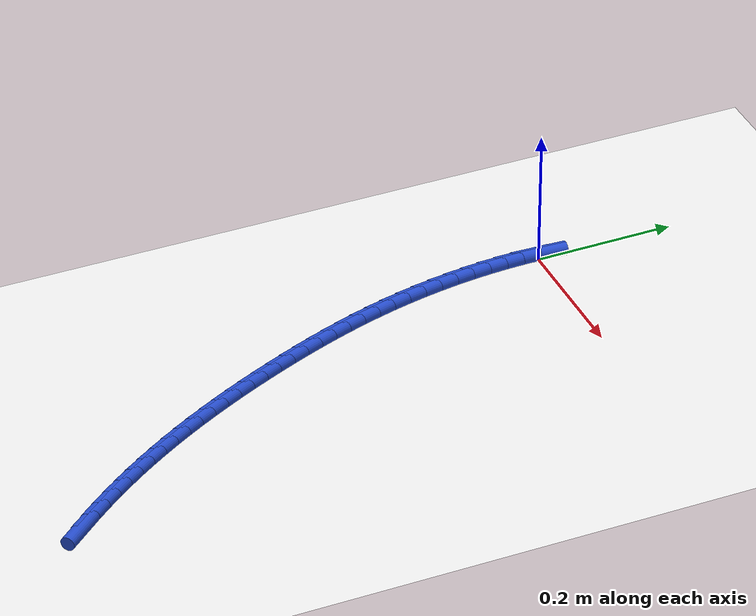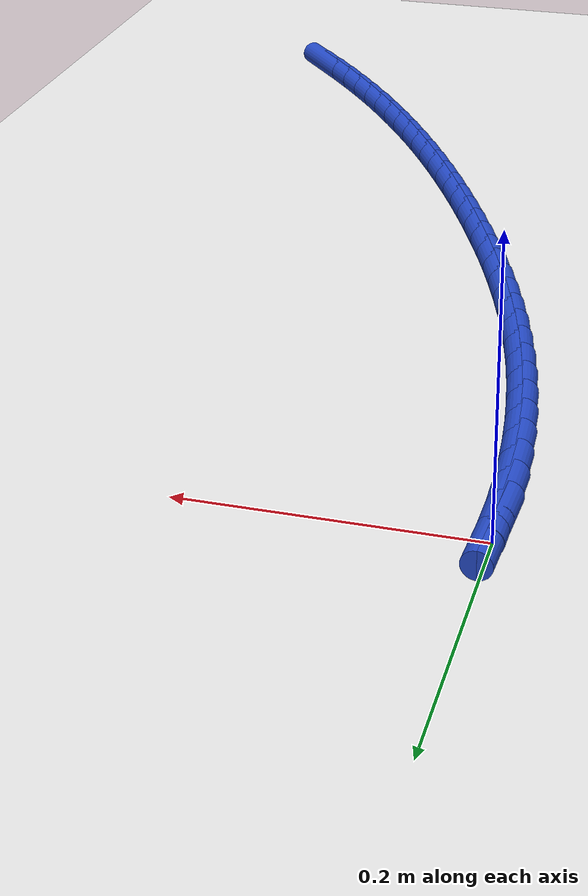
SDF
<sdf version="1.6">
 <world name="default">
  <model name="ground_plane">
   <static>1</static>
   <link name="link">
    <collision name="collision">
     <geometry><plane><normal>0 0 1</normal><size>100 100</size></plane></geometry>
     <surface><friction><ode><mu>100</mu><mu2>50</mu2></ode></friction></surface>
    </collision>
    <visual name="visual">
     <cast_shadows>0</cast_shadows>
     <geometry><plane><normal>0 0 1</normal><size>100 100</size></plane></geometry>
     <material>
      <script><uri>file://media/materials/scripts/gazebo.material</uri><name>Gazebo/WhiteGlow</name></script>
     </material>
    </visual>
   </link>
  </model>
  <model name="line">
   <link name="link_0">
    <pose>-1.1275702593849246e-17 -2.0816681711721685e-17 0.01 0 1.57 1.5284242386121365</pose>
    <collision name="collision">
     <geometry><cylinder><radius>0.01</radius><length>0.08</length></cylinder></geometry>
    </collision>
    <visual name="visual">
     <material>
      <script><name>Gazebo/Blue</name><uri>file://media/materials/scripts/gazebo.material</uri></script>
     </material>
     <geometry><cylinder><radius>0.01</radius><length>0.08</length></cylinder></geometry>
    </visual>
   </link>
   <link name="link_247">
    <pose>0.31622685356395164 -0.7852717183395589 0.01 0 1.57 -0.8644060937689118</pose>
    <collision name="collision">
     <geometry><cylinder><radius>0.01</radius><length>0.08</length></cylinder></geometry>
    </collision>
    <visual name="visual">
     <material>
      <script><name>Gazebo/Blue</name><uri>file://media/materials/scripts/gazebo.material</uri></script>
     </material>
     <geometry><cylinder><radius>0.01</radius><length>0.08</length></cylinder></geometry>
    </visual>
   </link>
   <link name="link_248">
    <pose>0.29882026503027975 -0.7648718924744397 0.01 0 1.57 -0.8876654868476331</pose>
    <collision name="collision">
     <geometry><cylinder><radius>0.01</radius><length>0.08</length></cylinder></geometry>
    </collision>
    <visual name="visual">
     <material>
      <script><name>Gazebo/Blue</name><uri>file://media/materials/scripts/gazebo.material</uri></script>
     </material>
     <geometry><cylinder><radius>0.01</radius><length>0.08</length></cylinder></geometry>
    </visual>
   </link>
   <link name="link_249">
    <pose>0.282001062450877 -0.7442057426404529 0.01 0 1.57 -0.9104983355037081</pose>
    <collision name="collision">
     <geometry><cylinder><radius>0.01</radius><length>0.08</length></cylinder></geometry>
    </collision>
    <visual name="visual">
     <material>
      <script><name>Gazebo/Blue</name><uri>file://media/materials/scripts/gazebo.material</uri></script>
     </material>
     <geometry><cylinder><radius>0.01</radius><length>0.08</length></cylinder></geometry>
    </visual>
   </link>
   <link name="link_250">
    <pose>0.2657501526614574 -0.7232795568753297 0.01 0 1.57 -0.9328552674432303</pose>
    <collision name="collision">
     <geometry><cylinder><radius>0.01</radius><length>0.08</length></cylinder></geometry>
    </collision>
    <visual name="visual">
     <material>
      <script><name>Gazebo/Blue</name><uri>file://media/materials/scripts/gazebo.material</uri></script>
     </material>
     <geometry><cylinder><radius>0.01</radius><length>0.08</length></cylinder></geometry>
    </visual>
   </link>
   <link name="link_251">
    <pose>0.2500484424977351 -0.7020996232168016 0.01 0 1.57 -0.9546900209784477</pose>
    <collision name="collision">
     <geometry><cylinder><radius>0.01</radius><length>0.08</length></cylinder></geometry>
    </collision>
    <visual name="visual">
     <material>
      <script><name>Gazebo/Blue</name><uri>file://media/materials/scripts/gazebo.material</uri></script>
     </material>
     <geometry><cylinder><radius>0.01</radius><length>0.08</length></cylinder></geometry>
    </visual>
   </link>
   <link name="link_252">
    <pose>0.23487683879542384 -0.6806722297025989 0.01 0 1.57 -0.9759597164682492</pose>
    <collision name="collision">
     <geometry><cylinder><radius>0.01</radius><length>0.08</length></cylinder></geometry>
    </collision>
    <visual name="visual">
     <material>
      <script><name>Gazebo/Blue</name><uri>file://media/materials/scripts/gazebo.material</uri></script>
     </material>
     <geometry><cylinder><radius>0.01</radius><length>0.08</length></cylinder></geometry>
    </visual>
   </link>
   <link name="link_253">
    <pose>0.22021624839023862 -0.6590036643704545 0.01 0 1.57 -0.9966250515895099</pose>
    <collision name="collision">
     <geometry><cylinder><radius>0.01</radius><length>0.08</length></cylinder></geometry>
    </collision>
    <visual name="visual">
     <material>
      <script><name>Gazebo/Blue</name><uri>file://media/materials/scripts/gazebo.material</uri></script>
     </material>
     <geometry><cylinder><radius>0.01</radius><length>0.08</length></cylinder></geometry>
    </visual>
   </link>
   <link name="link_254">
    <pose>0.20604757811789318 -0.6371002152580991 0.01 0 1.57 -1.0166504215663792</pose>
    <collision name="collision">
     <geometry><cylinder><radius>0.01</radius><length>0.08</length></cylinder></geometry>
    </collision>
    <visual name="visual">
     <material>
      <script><name>Gazebo/Blue</name><uri>file://media/materials/scripts/gazebo.material</uri></script>
     </material>
     <geometry><cylinder><radius>0.01</radius><length>0.08</length></cylinder></geometry>
    </visual>
   </link>
   <link name="link_255">
    <pose>0.1923517348141016 -0.6149681704032641 0.01 0 1.57 -1.0360039679335038</pose>
    <collision name="collision">
     <geometry><cylinder><radius>0.01</radius><length>0.08</length></cylinder></geometry>
    </collision>
    <visual name="visual">
     <material>
      <script><name>Gazebo/Blue</name><uri>file://media/materials/scripts/gazebo.material</uri></script>
     </material>
     <geometry><cylinder><radius>0.01</radius><length>0.08</length></cylinder></geometry>
    </visual>
   </link>
   <link name="link_256">
    <pose>0.17910962531457797 -0.5926138178436806 0.01 0 1.57 -1.0546575614224025</pose>
    <collision name="collision">
     <geometry><cylinder><radius>0.01</radius><length>0.08</length></cylinder></geometry>
    </collision>
    <visual name="visual">
     <material>
      <script><name>Gazebo/Blue</name><uri>file://media/materials/scripts/gazebo.material</uri></script>
     </material>
     <geometry><cylinder><radius>0.01</radius><length>0.08</length></cylinder></geometry>
    </visual>
   </link>
   <link name="link_257">
    <pose>0.16630215645503654 -0.5700434456170803 0.01 0 1.57 -1.0725867260849322</pose>
    <collision name="collision">
     <geometry><cylinder><radius>0.01</radius><length>0.08</length></cylinder></geometry>
    </collision>
    <visual name="visual">
     <material>
      <script><name>Gazebo/Blue</name><uri>file://media/materials/scripts/gazebo.material</uri></script>
     </material>
     <geometry><cylinder><radius>0.01</radius><length>0.08</length></cylinder></geometry>
    </visual>
   </link>
   <link name="link_258">
    <pose>0.1539102350711913 -0.5472633417611941 0.01 0 1.57 -1.089770512789628</pose>
    <collision name="collision">
     <geometry><cylinder><radius>0.01</radius><length>0.08</length></cylinder></geometry>
    </collision>
    <visual name="visual">
     <material>
      <script><name>Gazebo/Blue</name><uri>file://media/materials/scripts/gazebo.material</uri></script>
     </material>
     <geometry><cylinder><radius>0.01</radius><length>0.08</length></cylinder></geometry>
    </visual>
   </link>
   <link name="link_259">
    <pose>0.14191476799875657 -0.5242797943137538 0.01 0 1.57 -1.1061913307697466</pose>
    <collision name="collision">
     <geometry><cylinder><radius>0.01</radius><length>0.08</length></cylinder></geometry>
    </collision>
    <visual name="visual">
     <material>
      <script><name>Gazebo/Blue</name><uri>file://media/materials/scripts/gazebo.material</uri></script>
     </material>
     <geometry><cylinder><radius>0.01</radius><length>0.08</length></cylinder></geometry>
    </visual>
   </link>
   <link name="link_260">
    <pose>0.13029666207344637 -0.5010990913124905 0.01 0 1.57 -1.1218347460149003</pose>
    <collision name="collision">
     <geometry><cylinder><radius>0.01</radius><length>0.08</length></cylinder></geometry>
    </collision>
    <visual name="visual">
     <material>
      <script><name>Gazebo/Blue</name><uri>file://media/materials/scripts/gazebo.material</uri></script>
     </material>
     <geometry><cylinder><radius>0.01</radius><length>0.08</length></cylinder></geometry>
    </visual>
   </link>
   <link name="link_261">
    <pose>0.11903682413097454 -0.4777275207951348 0.01 0 1.57 -1.1366892550506047</pose>
    <collision name="collision">
     <geometry><cylinder><radius>0.01</radius><length>0.08</length></cylinder></geometry>
    </collision>
    <visual name="visual">
     <material>
      <script><name>Gazebo/Blue</name><uri>file://media/materials/scripts/gazebo.material</uri></script>
     </material>
     <geometry><cylinder><radius>0.01</radius><length>0.08</length></cylinder></geometry>
    </visual>
   </link>
   <link name="link_262">
    <pose>0.10811616100705584 -0.4541713707994195 0.01 0 1.57 -1.150747321769742</pose>
    <collision name="collision">
     <geometry><cylinder><radius>0.01</radius><length>0.08</length></cylinder></geometry>
    </collision>
    <visual name="visual">
     <material>
      <script><name>Gazebo/Blue</name><uri>file://media/materials/scripts/gazebo.material</uri></script>
     </material>
     <geometry><cylinder><radius>0.01</radius><length>0.08</length></cylinder></geometry>
    </visual>
   </link>
   <link name="link_263">
    <pose>0.09751561236097486 -0.4304369212874804 0.01 0 1.57 -1.1646308104308487</pose>
    <collision name="collision">
     <geometry><cylinder><radius>0.01</radius><length>0.08</length></cylinder></geometry>
    </collision>
    <visual name="visual">
     <material>
      <script><name>Gazebo/Blue</name><uri>file://media/materials/scripts/gazebo.material</uri></script>
     </material>
     <geometry><cylinder><radius>0.01</radius><length>0.08</length></cylinder></geometry>
    </visual>
   </link>
   <link name="link_264">
    <pose>0.08723221631595575 -0.4065264915105578 0.01 0 1.57 -1.1799778182889022</pose>
    <collision name="collision">
     <geometry><cylinder><radius>0.01</radius><length>0.08</length></cylinder></geometry>
    </collision>
    <visual name="visual">
     <material>
      <script><name>Gazebo/Blue</name><uri>file://media/materials/scripts/gazebo.material</uri></script>
     </material>
     <geometry><cylinder><radius>0.01</radius><length>0.08</length></cylinder></geometry>
    </visual>
   </link>
   <link name="link_265">
    <pose>0.07730502221867146 -0.38243206468341634 0.01 0 1.57 -1.197054222611794</pose>
    <collision name="collision">
     <geometry><cylinder><radius>0.01</radius><length>0.08</length></cylinder></geometry>
    </collision>
    <visual name="visual">
     <material>
      <script><name>Gazebo/Blue</name><uri>file://media/materials/scripts/gazebo.material</uri></script>
     </material>
     <geometry><cylinder><radius>0.01</radius><length>0.08</length></cylinder></geometry>
    </visual>
   </link>
   <link name="link_266">
    <pose>0.06777984660873679 -0.35814395908589824 0.01 0 1.57 -1.2158599235385492</pose>
    <collision name="collision">
     <geometry><cylinder><radius>0.01</radius><length>0.08</length></cylinder></geometry>
    </collision>
    <visual name="visual">
     <material>
      <script><name>Gazebo/Blue</name><uri>file://media/materials/scripts/gazebo.material</uri></script>
     </material>
     <geometry><cylinder><radius>0.01</radius><length>0.08</length></cylinder></geometry>
    </visual>
   </link>
   <link name="link_267">
    <pose>0.058702506025766425 -0.3336524929978453 0.01 0 1.57 -1.2363911394897755</pose>
    <collision name="collision">
     <geometry><cylinder><radius>0.01</radius><length>0.08</length></cylinder></geometry>
    </collision>
    <visual name="visual">
     <material>
      <script><name>Gazebo/Blue</name><uri>file://media/materials/scripts/gazebo.material</uri></script>
     </material>
     <geometry><cylinder><radius>0.01</radius><length>0.08</length></cylinder></geometry>
    </visual>
   </link>
   <link name="link_268">
    <pose>0.05011881700937515 -0.30894798469909945 0.01 0 1.57 -1.2586387252871047</pose>
    <collision name="collision">
     <geometry><cylinder><radius>0.01</radius><length>0.08</length></cylinder></geometry>
    </collision>
    <visual name="visual">
     <material>
      <script><name>Gazebo/Blue</name><uri>file://media/materials/scripts/gazebo.material</uri></script>
     </material>
     <geometry><cylinder><radius>0.01</radius><length>0.08</length></cylinder></geometry>
    </visual>
   </link>
   <link name="link_269">
    <pose>0.04207459609917763 -0.2840207524695026 0.01 0 1.57 -1.2825863751188458</pose>
    <collision name="collision">
     <geometry><cylinder><radius>0.01</radius><length>0.08</length></cylinder></geometry>
    </collision>
    <visual name="visual">
     <material>
      <script><name>Gazebo/Blue</name><uri>file://media/materials/scripts/gazebo.material</uri></script>
     </material>
     <geometry><cylinder><radius>0.01</radius><length>0.08</length></cylinder></geometry>
    </visual>
   </link>
   <link name="link_270">
    <pose>0.03461565983478841 -0.2588611145888958 0.01 0 1.57 -1.3082087520306465</pose>
    <collision name="collision">
     <geometry><cylinder><radius>0.01</radius><length>0.08</length></cylinder></geometry>
    </collision>
    <visual name="visual">
     <material>
      <script><name>Gazebo/Blue</name><uri>file://media/materials/scripts/gazebo.material</uri></script>
     </material>
     <geometry><cylinder><radius>0.01</radius><length>0.08</length></cylinder></geometry>
    </visual>
   </link>
   <link name="link_271">
    <pose>0.027787824755822678 -0.2334593893371225 0.01 0 1.57 -1.3354242787047736</pose>
    <collision name="collision">
     <geometry><cylinder><radius>0.01</radius><length>0.08</length></cylinder></geometry>
    </collision>
    <visual name="visual">
     <material>
      <script><name>Gazebo/Blue</name><uri>file://media/materials/scripts/gazebo.material</uri></script>
     </material>
     <geometry><cylinder><radius>0.01</radius><length>0.08</length></cylinder></geometry>
    </visual>
   </link>
   <link name="link_272">
    <pose>0.021636223738241762 -0.20780817156541428 0.01 0 1.57 -1.3634721953513482</pose>
    <collision name="collision">
     <geometry><cylinder><radius>0.01</radius><length>0.08</length></cylinder></geometry>
    </collision>
    <visual name="visual">
     <material>
      <script><name>Gazebo/Blue</name><uri>file://media/materials/scripts/gazebo.material</uri></script>
     </material>
     <geometry><cylinder><radius>0.01</radius><length>0.08</length></cylinder></geometry>
    </visual>
   </link>
   <link name="link_273">
    <pose>0.016194551530807313 -0.18193814461050323 0.01 0 1.57 -1.3918578505410675</pose>
    <collision name="collision">
     <geometry><cylinder><radius>0.01</radius><length>0.08</length></cylinder></geometry>
    </collision>
    <visual name="visual">
     <material>
      <script><name>Gazebo/Blue</name><uri>file://media/materials/scripts/gazebo.material</uri></script>
     </material>
     <geometry><cylinder><radius>0.01</radius><length>0.08</length></cylinder></geometry>
    </visual>
   </link>
   <link name="link_274">
    <pose>0.01148703564181802 -0.1559115173241646 0.01 0 1.57 -1.42073064863637</pose>
    <collision name="collision">
     <geometry><cylinder><radius>0.01</radius><length>0.08</length></cylinder></geometry>
    </collision>
    <visual name="visual">
     <material>
      <script><name>Gazebo/Blue</name><uri>file://media/materials/scripts/gazebo.material</uri></script>
     </material>
     <geometry><cylinder><radius>0.01</radius><length>0.08</length></cylinder></geometry>
    </visual>
   </link>
   <link name="link_275">
    <pose>0.00753761851778763 -0.1297914478020028 0.01 0 1.57 -1.4502617477049595</pose>
    <collision name="collision">
     <geometry><cylinder><radius>0.01</radius><length>0.08</length></cylinder></geometry>
    </collision>
    <visual name="visual">
     <material>
      <script><name>Gazebo/Blue</name><uri>file://media/materials/scripts/gazebo.material</uri></script>
     </material>
     <geometry><cylinder><radius>0.01</radius><length>0.08</length></cylinder></geometry>
    </visual>
   </link>
   <link name="link_276">
    <pose>0.004370242605229877 -0.10364109413962223 0.01 0 1.57 -1.4806272495181876</pose>
    <collision name="collision">
     <geometry><cylinder><radius>0.01</radius><length>0.08</length></cylinder></geometry>
    </collision>
    <visual name="visual">
     <material>
      <script><name>Gazebo/Blue</name><uri>file://media/materials/scripts/gazebo.material</uri></script>
     </material>
     <geometry><cylinder><radius>0.01</radius><length>0.08</length></cylinder></geometry>
    </visual>
   </link>
   <link name="link_277">
    <pose>0.002008850350658496 -0.07752361443262736 0.01 0 1.57 -1.5120101436053557</pose>
    <collision name="collision">
     <geometry><cylinder><radius>0.01</radius><length>0.08</length></cylinder></geometry>
    </collision>
    <visual name="visual">
     <material>
      <script><name>Gazebo/Blue</name><uri>file://media/materials/scripts/gazebo.material</uri></script>
     </material>
     <geometry><cylinder><radius>0.01</radius><length>0.08</length></cylinder></geometry>
    </visual>
   </link>
   <link name="link_278">
    <pose>0.00047738420058722735 -0.05150216677662253 0.01 0 1.57 -1.5446020699199607</pose>
    <collision name="collision">
     <geometry><cylinder><radius>0.01</radius><length>0.08</length></cylinder></geometry>
    </collision>
    <visual name="visual">
     <material>
      <script><name>Gazebo/Blue</name><uri>file://media/materials/scripts/gazebo.material</uri></script>
     </material>
     <geometry><cylinder><radius>0.01</radius><length>0.08</length></cylinder></geometry>
    </visual>
   </link>
   <link name="link_279">
    <pose>-0.00020021339847020158 -0.025639909267211446 0.01 0 1.57 1.562987822982298</pose>
    <collision name="collision">
     <geometry><cylinder><radius>0.01</radius><length>0.08</length></cylinder></geometry>
    </collision>
    <visual name="visual">
     <material>
      <script><name>Gazebo/Blue</name><uri>file://media/materials/scripts/gazebo.material</uri></script>
     </material>
     <geometry><cylinder><radius>0.01</radius><length>0.08</length></cylinder></geometry>
    </visual>
   </link>
   <link name="link_280">
    <pose>-1.1275702593849246e-17 -5.551115123125783e-17 0.01 0 1.57 1.5273611190386336</pose>
    <collision name="collision">
     <geometry><cylinder><radius>0.01</radius><length>0.08</length></cylinder></geometry>
    </collision>
    <visual name="visual">
     <material>
      <script><name>Gazebo/Blue</name><uri>file://media/materials/scripts/gazebo.material</uri></script>
     </material>
     <geometry><cylinder><radius>0.01</radius><length>0.08</length></cylinder></geometry>
    </visual>
   </link>
  </model>
 </world>
</sdf>
